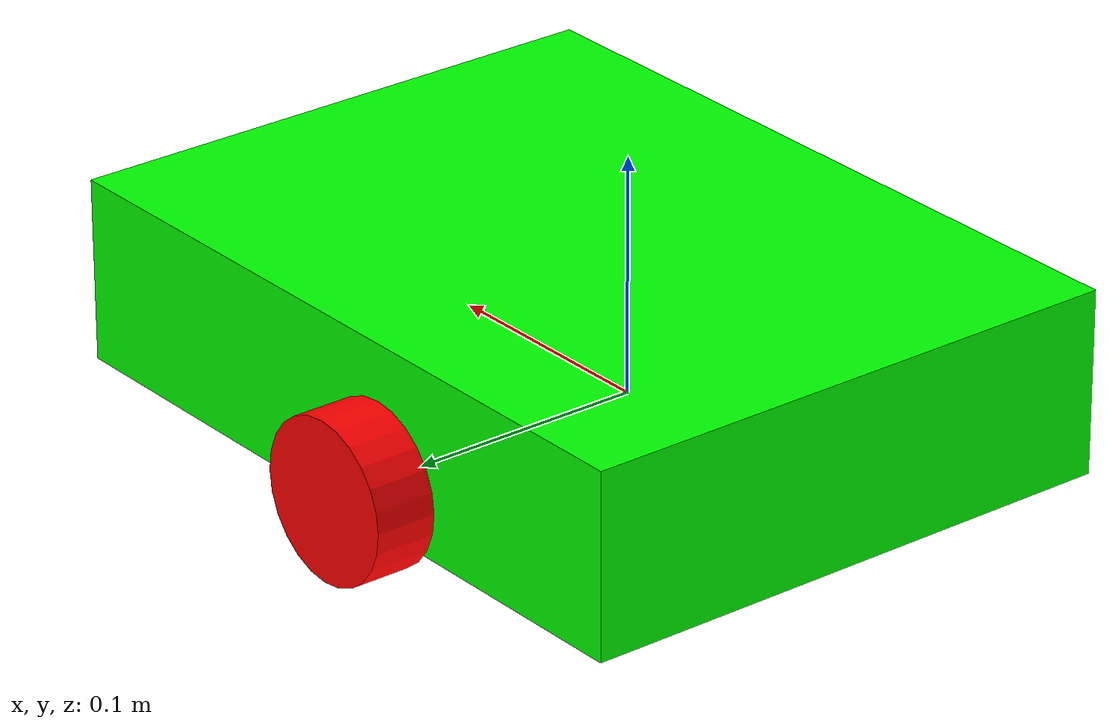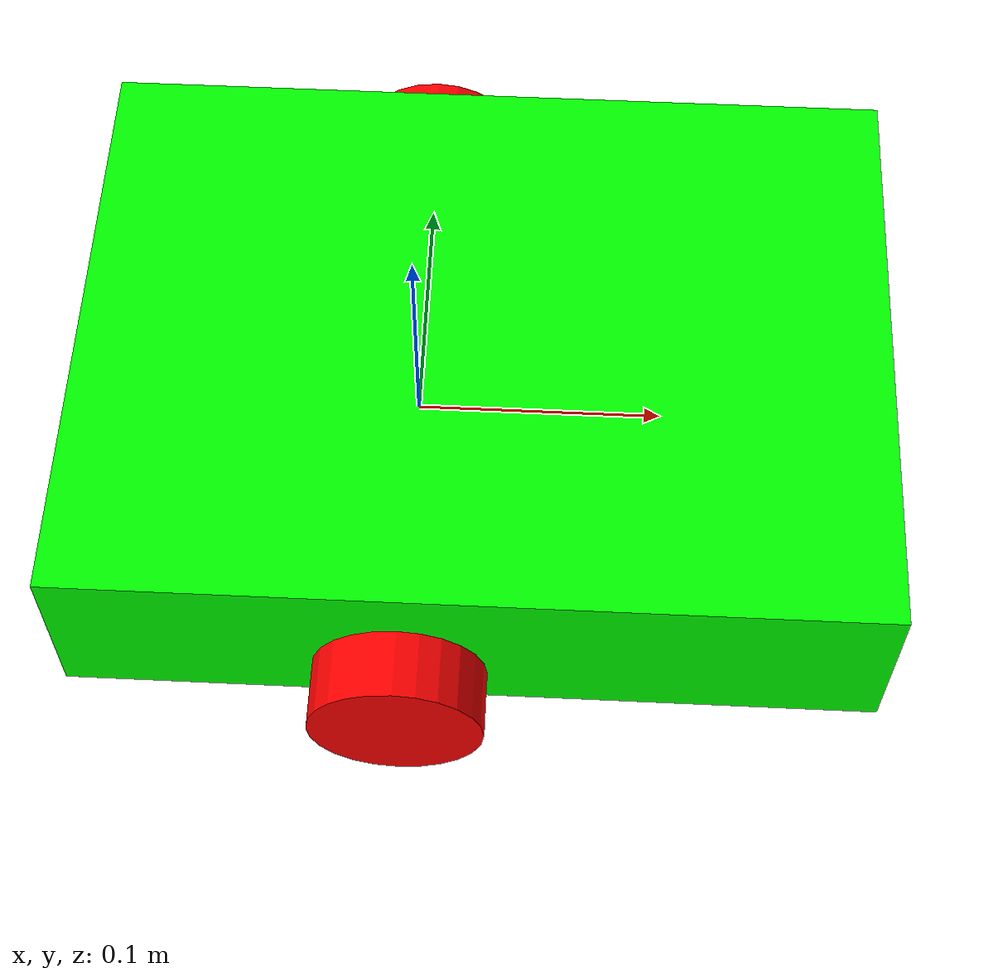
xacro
<?xml version="1.0"?>
<robot xmlns:xacro="http://www.ros.org/wiki/xacro">

    <xacro:include filename = "inertial_macros.xacro" />

    <xacro:property name="chassis_length"           value="0.320"/>
    <xacro:property name="chassis_width"            value="0.240"/>
    <xacro:property name="chassis_height"           value="0.078"/>
    <xacro:property name="chassis_mass"             value="0.700"/>

    <xacro:property name="wheel_radius"             value="0.034"/>
    <xacro:property name="wheel_thickness"          value="0.026"/>
    <xacro:property name="wheel_mass"               value="0.050"/>
    <xacro:property name="wheel_offset_x"           value="0.133"/>
    <xacro:property name="wheel_offset_y"           value="0.133"/>
    <xacro:property name="wheel_offset_z"           value="0.020"/>

    <xacro:property name="caster_wheel_radius"      value="${wheel_radius - wheel_offset_z}"/>
    <xacro:property name="caster_wheel_mass"        value="0.010"/>
    <xacro:property name="caster_wheel_offset_x"    value="0.230"/>
    <xacro:property name="caster_wheel_offset_z"    value="${wheel_offset_z - wheel_radius + caster_wheel_radius}"/>

    <!-- Colors -->
    <material name="white">
        <color rgba= "1 1 1 1"/>
    </material>

    <material name="black">
        <color rgba= "0 0 0 1"/>
    </material>

    <material name= "orange">
        <color rgba= "1 0.25 0 1"/>
    </material>

    <material name="cyan">
        <color rgba= "0 1 1 1"/>
    </material>

    <material name="indigo">
        <color rgba= "0.294 0 0.51 1"/>
    </material>
    <material name="green">
        <color rgba="0 1 0 1"/>
    </material>

    <material name="red">
        <color rgba="1 0 0 1"/>
    </material>

    <!-- convention (except base_link): joint followed by link -->
    <!-- base_link -->
    <link name="base_link">
    </link>

    <!-- base_footprint -->
    <joint name="base_footprint_joint" type="fixed">
        <parent link= "base_link"/>
        <child link= "base_footprint"/>
        <origin xyz= "0 0 0" rpy= "0 0 0"/>
    </joint>

    <link name="base_footprint">
    </link>

    <!-- chasis -->
    <joint name="chasis_joint" type="fixed">
        <parent link= "base_link"/>
        <child link= "chasis"/>
        <origin xyz= "${-wheel_offset_x} 0 ${-wheel_offset_z}"/>
    </joint>

    <link name="chasis">
        <visual>
            <origin xyz= "${chassis_length/2} 0 ${chassis_height/2}" rpy= "0 0 0"/>
            <geometry>
                <box size = "${chassis_length} ${chassis_width} ${chassis_height}"/>
            </geometry>
            <material name= "green"/>
        </visual>
        <collision>
            <origin xyz= "${chassis_length/2} 0 ${chassis_height/2}" rpy= "0 0 0"/>
            <geometry>
                <box size = "${chassis_length} ${chassis_width} ${chassis_height}"/>
            </geometry>
        </collision>
        <xacro:inertial_box mass= "0.5" x="${chassis_length}" y="${chassis_width}" z="${chassis_height}">
            <origin xyz= "${chassis_length/2} 0 ${chassis_height/2}" rpy= "0 0 0"/>
        </xacro:inertial_box>
    </link>

    <gazebo reference="chasis">
        <material>Gazebo/Green</material>
    </gazebo>

    <!-- left_wheel -->
    <joint name="left_wheel_joint" type="continuous">
        <parent link= "base_link"/>
        <child link= "left_wheel"/>
        <origin xyz= "0 ${wheel_offset_y} 0" rpy = "${pi/2} 0 0"/>
        <axis xyz= "0 0 -1"/>
    </joint>

    <link name="left_wheel">
        <visual>
            <geometry>
                <cylinder radius = "${wheel_radius}" length= "${wheel_thickness}"/>
            </geometry>
            <material name= "red"/>
        </visual>
        <collision>
            <geometry>
                <sphere radius = "${wheel_radius}" />
            </geometry>
        </collision>
        <xacro:inertial_cylinder mass = "${wheel_mass}" radius= "${wheel_radius}" length= "${wheel_thickness}">
            <origin xyz= "0 0 0" rpy= "0 0 0"/>
        </xacro:inertial_cylinder>
    </link>

    <gazebo reference="left_wheel">
        <material>Gazebo/Red</material>
    </gazebo>

    <!-- right_wheel -->
    <joint name="right_wheel_joint" type="continuous">
        <parent link= "base_link"/>
        <child link= "right_wheel"/>
        <origin xyz= "0 ${-wheel_offset_y} 0" rpy = "${pi/2} 0 0"/>
        <axis xyz= "0 0 -1"/>
    </joint>

    <link name="right_wheel">
        <visual>
            <geometry>
                <cylinder radius = "${wheel_radius}" length= "${wheel_thickness}"/>
            </geometry>
            <material name= "red"/>
        </visual>
        <collision>
            <geometry>
                <sphere radius = "${wheel_radius}" />
            </geometry>
        </collision>
        <xacro:inertial_cylinder mass = "${wheel_mass}" radius= "${wheel_radius}" length= "${wheel_thickness}">
            <origin xyz= "0 0 0" rpy= "0 0 0"/>
        </xacro:inertial_cylinder>
    </link>

    <gazebo reference="right_wheel">
        <material>Gazebo/Red</material>
    </gazebo>

    <!-- caster_wheel -->
    <joint name="caster_wheel_joint" type="fixed">
        <parent link= "chasis"/>
        <child link= "caster_wheel"/>
        <origin xyz= "${caster_wheel_offset_x} 0 0"/>
    </joint>

    <link name="caster_wheel">
        <visual>
            <geometry>
                <sphere radius = "${caster_wheel_radius}"/>
            </geometry>
            <material name= "red"/>
        </visual>
        <collision>
            <geometry>
                <sphere radius = "${caster_wheel_radius}"/>
            </geometry>
        </collision>
        <xacro:inertial_sphere mass= "${caster_wheel_mass}" radius= "${caster_wheel_radius}">
            <origin xyz= "0 0 0" rpy= "0 0 0"/>
        </xacro:inertial_sphere>
    </link>

    <gazebo reference="caster_wheel">
        <material>Gazebo/Red</material>
        <mu1 value= "0.0001"/>
        <mu2 value= "0.0001"/>
    </gazebo>

</robot>
